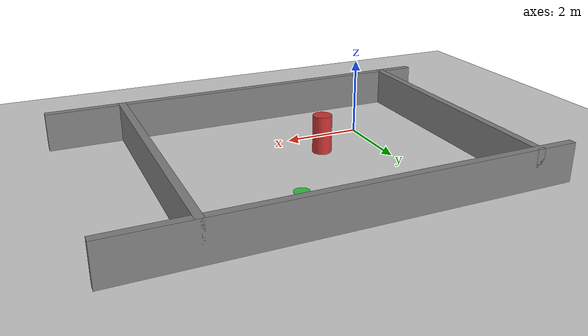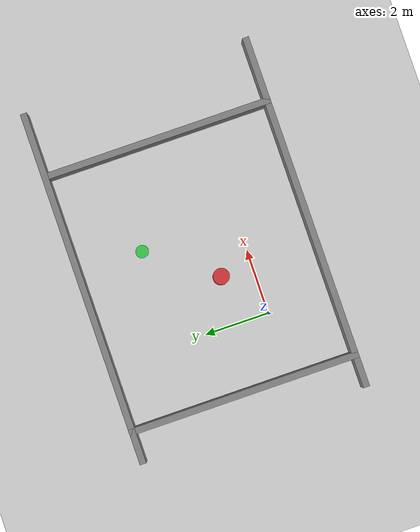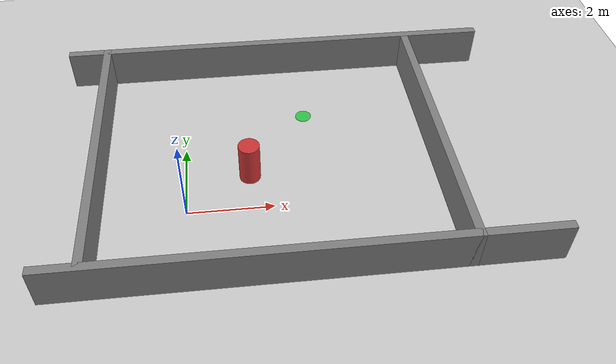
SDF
<?xml version="1.0" ?>
<sdf version="1.6">
  <world name="navigation_arena">
    <!-- Physics parameters for deterministic simulation -->
    <physics type="ode">
      <max_step_size>0.001</max_step_size>
      <real_time_factor>1</real_time_factor>
      <real_time_update_rate>1000</real_time_update_rate>
    </physics>

    <!-- Sun light -->
    <include>
      <uri>model://sun</uri>
    </include>

    <!-- Ground plane -->
    <include>
      <uri>model://ground_plane</uri>
    </include>

    <!-- Boundary Wall North -->
    <model name="wall_north">
      <static>true</static>
      <pose>2.5 5.0 0.5 0 0 0</pose>
      <link name="link">
        <collision name="collision">
          <geometry>
            <box><size>11.0 0.2 1.0</size></box>
          </geometry>
        </collision>
        <visual name="visual">
          <geometry>
            <box><size>11.0 0.2 1.0</size></box>
          </geometry>
          <material>
            <ambient>0.5 0.5 0.5 1</ambient>
            <diffuse>0.5 0.5 0.5 1</diffuse>
          </material>
        </visual>
      </link>
    </model>

    <!-- Boundary Wall South -->
    <model name="wall_south">
      <static>true</static>
      <pose>2.5 -2.0 0.5 0 0 0</pose>
      <link name="link">
        <collision name="collision">
          <geometry>
            <box><size>11.0 0.2 1.0</size></box>
          </geometry>
        </collision>
        <visual name="visual">
          <geometry>
            <box><size>11.0 0.2 1.0</size></box>
          </geometry>
          <material>
            <ambient>0.5 0.5 0.5 1</ambient>
            <diffuse>0.5 0.5 0.5 1</diffuse>
          </material>
        </visual>
      </link>
    </model>

    <!-- Boundary Wall East -->
    <model name="wall_east">
      <static>true</static>
      <pose>6.0 1.5 0.5 0 0 0</pose>
      <link name="link">
        <collision name="collision">
          <geometry>
            <box><size>0.2 7.2 1.0</size></box>
          </geometry>
        </collision>
        <visual name="visual">
          <geometry>
            <box><size>0.2 7.2 1.0</size></box>
          </geometry>
          <material>
            <ambient>0.5 0.5 0.5 1</ambient>
            <diffuse>0.5 0.5 0.5 1</diffuse>
          </material>
        </visual>
      </link>
    </model>

    <!-- Boundary Wall West -->
    <model name="wall_west">
      <static>true</static>
      <pose>-2.0 1.5 0.5 0 0 0</pose>
      <link name="link">
        <collision name="collision">
          <geometry>
            <box><size>0.2 7.2 1.0</size></box>
          </geometry>
        </collision>
        <visual name="visual">
          <geometry>
            <box><size>0.2 7.2 1.0</size></box>
          </geometry>
          <material>
            <ambient>0.5 0.5 0.5 1</ambient>
            <diffuse>0.5 0.5 0.5 1</diffuse>
          </material>
        </visual>
      </link>
    </model>

    <!-- Target Location Indicator at (3.0, 3.0) -->
    <model name="target_marker">
      <static>true</static>
      <pose>3.0 3.0 0.01 0 0 0</pose>
      <link name="link">
        <visual name="visual">
          <geometry>
            <cylinder>
              <radius>0.20</radius>
              <length>0.02</length>
            </cylinder>
          </geometry>
          <material>
            <ambient>0.1 0.8 0.2 0.8</ambient>
            <diffuse>0.1 0.8 0.2 0.8</diffuse>
          </material>
        </visual>
      </link>
    </model>

    <!-- Sample Obstacle Pillar 1 -->
    <model name="obstacle_pillar_1">
      <static>true</static>
      <pose>1.5 1.0 0.5 0 0 0</pose>
      <link name="link">
        <collision name="collision">
          <geometry>
            <cylinder>
              <radius>0.25</radius>
              <length>1.0</length>
            </cylinder>
          </geometry>
        </collision>
        <visual name="visual">
          <geometry>
            <cylinder>
              <radius>0.25</radius>
              <length>1.0</length>
            </cylinder>
          </geometry>
          <material>
            <ambient>0.8 0.2 0.2 1</ambient>
            <diffuse>0.8 0.2 0.2 1</diffuse>
          </material>
        </visual>
      </link>
    </model>

  </world>
</sdf>
